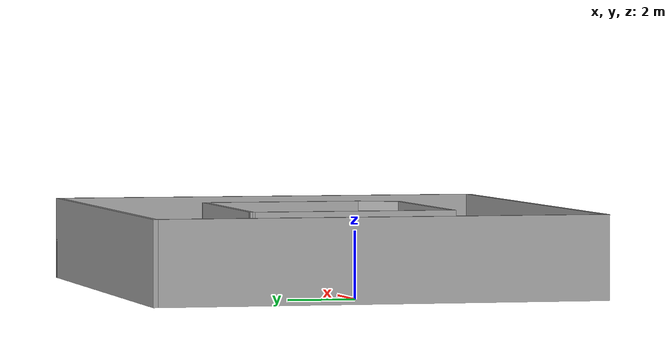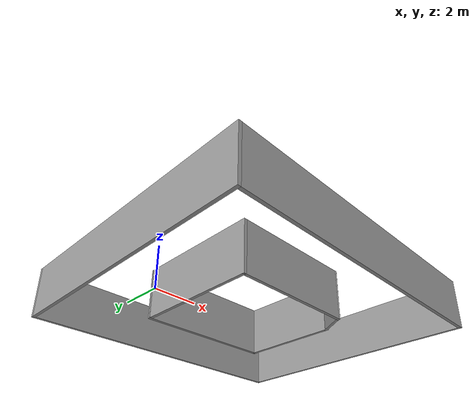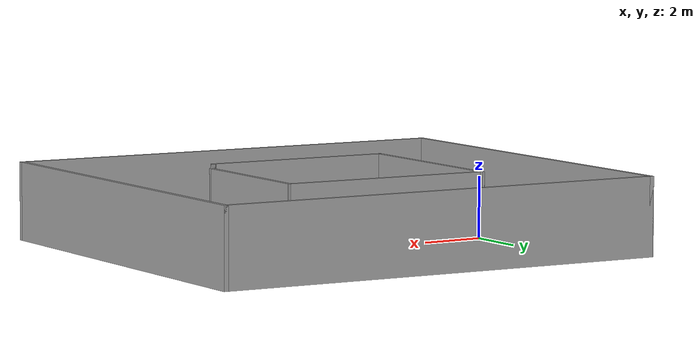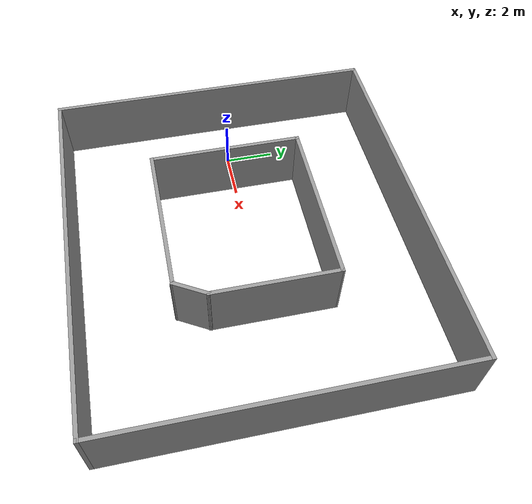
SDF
<?xml version='1.0'?>
<sdf version='1.6'>
  <model name='square'>
    <pose frame=''>5.27223 -0.305204 0 0 -0 0</pose>
    <link name='Wall_0'>
      <collision name='Wall_0_Collision'>
        <geometry>
          <box>
            <size>13.5 0.15 2.5</size>
          </box>
        </geometry>
        <pose frame=''>0 0 1.25 0 -0 0</pose>
      </collision>
      <visual name='Wall_0_Visual'>
        <pose frame=''>0 0 1.25 0 -0 0</pose>
        <geometry>
          <box>
            <size>13.5 0.15 2.5</size>
          </box>
        </geometry>
        <material>
          <script>
            <uri>file://media/materials/scripts/gazebo.material</uri>
            <name>Gazebo/Grey</name>
          </script>
          <ambient>1 1 1 1</ambient>
        </material>
      </visual>
      <pose frame=''>-7.425 0 0 0 0 -1.5708</pose>
    </link>
    <link name='Wall_10'>
      <collision name='Wall_10_Collision'>
        <geometry>
          <box>
            <size>6.92548 0.15 2.5</size>
          </box>
        </geometry>
        <pose frame=''>0 0 1.25 0 -0 0</pose>
      </collision>
      <visual name='Wall_10_Visual'>
        <pose frame=''>0 0 1.25 0 -0 0</pose>
        <geometry>
          <box>
            <size>6.92548 0.15 2.5</size>
          </box>
        </geometry>
        <material>
          <script>
            <uri>file://media/materials/scripts/gazebo.material</uri>
            <name>Gazebo/Grey</name>
          </script>
          <ambient>1 1 1 1</ambient>
        </material>
      </visual>
      <pose frame=''>-0.235888 2.95198 0 0 -0 3.12966</pose>
    </link>
    <link name='Wall_2'>
      <collision name='Wall_2_Collision'>
        <geometry>
          <box>
            <size>15 0.15 2.5</size>
          </box>
        </geometry>
        <pose frame=''>0 0 1.25 0 -0 0</pose>
      </collision>
      <visual name='Wall_2_Visual'>
        <pose frame=''>0 0 1.25 0 -0 0</pose>
        <geometry>
          <box>
            <size>15 0.15 2.5</size>
          </box>
        </geometry>
        <material>
          <script>
            <uri>file://media/materials/scripts/gazebo.material</uri>
            <name>Gazebo/Grey</name>
          </script>
          <ambient>1 1 1 1</ambient>
        </material>
      </visual>
      <pose frame=''>0 6.675 0 0 -0 0</pose>
    </link>
    <link name='Wall_3'>
      <collision name='Wall_3_Collision'>
        <geometry>
          <box>
            <size>13.5 0.15 2.5</size>
          </box>
        </geometry>
        <pose frame=''>0 0 1.25 0 -0 0</pose>
      </collision>
      <visual name='Wall_3_Visual'>
        <pose frame=''>0 0 1.25 0 -0 0</pose>
        <geometry>
          <box>
            <size>13.5 0.15 2.5</size>
          </box>
        </geometry>
        <material>
          <script>
            <uri>file://media/materials/scripts/gazebo.material</uri>
            <name>Gazebo/Grey</name>
          </script>
          <ambient>1 1 1 1</ambient>
        </material>
      </visual>
      <pose frame=''>7.425 0 0 0 0 -1.5708</pose>
    </link>
    <link name='Wall_4'>
      <collision name='Wall_4_Collision'>
        <geometry>
          <box>
            <size>15 0.15 2.5</size>
          </box>
        </geometry>
        <pose frame=''>0 0 1.25 0 -0 0</pose>
      </collision>
      <visual name='Wall_4_Visual'>
        <pose frame=''>0 0 1.25 0 -0 0</pose>
        <geometry>
          <box>
            <size>15 0.15 2.5</size>
          </box>
        </geometry>
        <material>
          <script>
            <uri>file://media/materials/scripts/gazebo.material</uri>
            <name>Gazebo/Grey</name>
          </script>
          <ambient>1 1 1 1</ambient>
        </material>
      </visual>
      <pose frame=''>0 -6.675 0 0 -0 3.14159</pose>
    </link>
    <link name='Wall_6'>
      <collision name='Wall_6_Collision'>
        <geometry>
          <box>
            <size>6.25 0.15 2.5</size>
          </box>
        </geometry>
        <pose frame=''>0 0 1.25 0 -0 0</pose>
      </collision>
      <visual name='Wall_6_Visual'>
        <pose frame=''>0 0 1.25 0 -0 0</pose>
        <geometry>
          <box>
            <size>6.25 0.15 2.5</size>
          </box>
        </geometry>
        <material>
          <script>
            <uri>file://media/materials/scripts/gazebo.material</uri>
            <name>Gazebo/Grey</name>
          </script>
          <ambient>1 1 1 1</ambient>
        </material>
      </visual>
      <pose frame=''>-3.62339 -0.057592 0 0 0 -1.5708</pose>
    </link>
    <link name='Wall_7'>
      <collision name='Wall_7_Collision'>
        <geometry>
          <box>
            <size>6.25 0.15 2.5</size>
          </box>
        </geometry>
        <pose frame=''>0 0 1.25 0 -0 0</pose>
      </collision>
      <visual name='Wall_7_Visual'>
        <pose frame=''>0 0 1.25 0 -0 0</pose>
        <geometry>
          <box>
            <size>6.25 0.15 2.5</size>
          </box>
        </geometry>
        <material>
          <script>
            <uri>file://media/materials/scripts/gazebo.material</uri>
            <name>Gazebo/Grey</name>
          </script>
          <ambient>1 1 1 1</ambient>
        </material>
      </visual>
      <pose frame=''>-0.573388 -3.10759 0 0 -0 0</pose>
    </link>
    <link name='Wall_8'>
      <collision name='Wall_8_Collision'>
        <geometry>
          <box>
            <size>1.5 0.15 2.5</size>
          </box>
        </geometry>
        <pose frame=''>0 0 1.25 0 -0 0</pose>
      </collision>
      <visual name='Wall_8_Visual'>
        <pose frame=''>0 0 1.25 0 -0 0</pose>
        <geometry>
          <box>
            <size>1.5 0.15 2.5</size>
          </box>
        </geometry>
        <material>
          <script>
            <uri>file://media/materials/scripts/gazebo.material</uri>
            <name>Gazebo/Grey</name>
          </script>
          <ambient>1 1 1 1</ambient>
        </material>
      </visual>
      <pose frame=''>2.81411 -2.52303 0 0 -0 1.0472</pose>
    </link>
    <link name='Wall_9'>
      <collision name='Wall_9_Collision'>
        <geometry>
          <box>
            <size>5 0.15 2.5</size>
          </box>
        </geometry>
        <pose frame=''>0 0 1.25 0 -0 0</pose>
      </collision>
      <visual name='Wall_9_Visual'>
        <pose frame=''>0 0 1.25 0 -0 0</pose>
        <geometry>
          <box>
            <size>5 0.15 2.5</size>
          </box>
        </geometry>
        <material>
          <script>
            <uri>file://media/materials/scripts/gazebo.material</uri>
            <name>Gazebo/Grey</name>
          </script>
          <ambient>1 1 1 1</ambient>
        </material>
      </visual>
      <pose frame=''>3.15161 0.486542 0 0 -0 1.5708</pose>
    </link>
    <static>1</static>
  </model>
</sdf>
